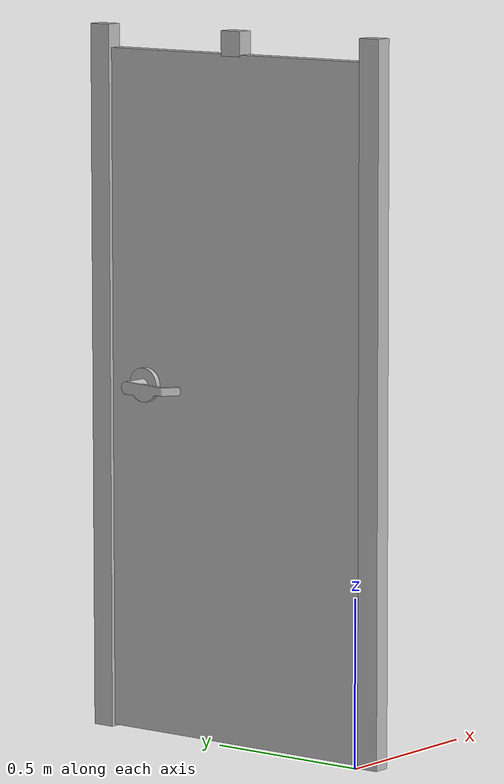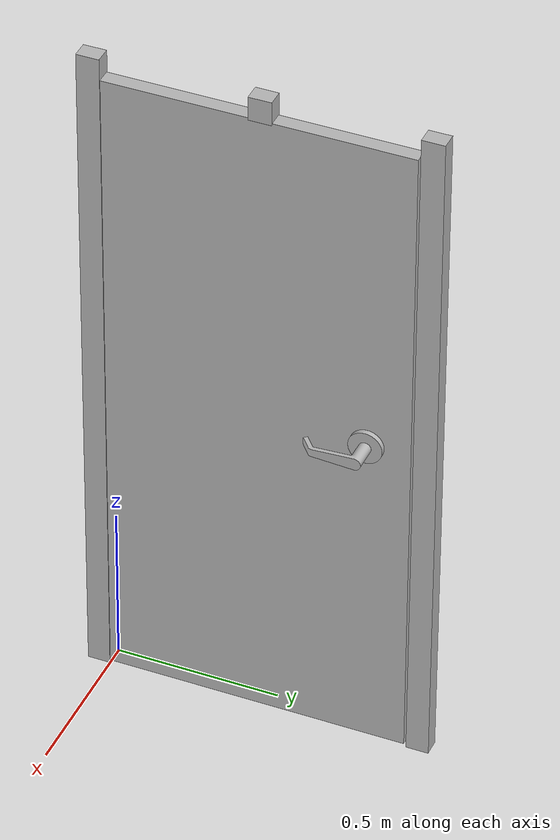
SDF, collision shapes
<?xml version="1.0" ?>
<sdf version="1.4">
  <model name="hinged_door">

    <link name="frame">
      <pose>0.06 -0.0005 0 0 0 0</pose>
      <collision name="collision_1">
        <pose>-0.025145 -0.03429 1.0541 0 0 0</pose>
        <geometry>
          <box>
            <size>0.05029 0.06858 2.10820</size>
          </box>
        </geometry>
      </collision>

      <collision name="collision_2">
        <pose>-0.025145 0.95631 1.0541 0 0 0</pose>
        <geometry>
          <box>
            <size>0.05029 0.06858 2.10820</size>
          </box>
        </geometry>
      </collision>

      <collision name="collision_3">
        <pose>-0.0251450 0.46482 2.07137 0 0 0</pose>
        <geometry>
          <box>
            <size>0.05029 0.06858 0.07366</size>
          </box>
        </geometry>
      </collision>

      <visual name="visual">
	<pose>0 -0.06858 0 0 0 0 </pose>
        <geometry>
          <mesh>
            <uri>model://hinged_door/meshes/frame.dae</uri>
          </mesh>
        </geometry>
      </visual>
    </link>

    <link name="door">
      <pose>-0.0 0.000 2.040 3.14159 0 1.57</pose>
      <inertial>
        <mass>41.3256</mass>
        <pose>0.4569 0.0349 1.016 0 0 0</pose>
        <inertia>
          <ixx>14.2053</ixx>
          <ixy>0.0004</ixy>
          <ixz>0.0000</ixz>
          <iyy>17.1997</iyy>
          <iyz>0.0000</iyz>
          <izz>3.0298</izz>
        </inertia>
      </inertial>
      <collision name="collision">
        <pose>0.4569 0.0349 1.016 0 0 0</pose>
        <geometry>
          <box>
            <size>0.9144 0.04445 2.032</size>
          </box>
        </geometry>
      </collision>

      <visual name="visual">
	<pose>0 -0.06858 0 0 0 0</pose>
        <geometry>
          <mesh>
            <uri>model://hinged_door/meshes/door.dae</uri>
          </mesh>
        </geometry>
      </visual>
    </link>

    <link name="handles">
      <pose>0.0 0.8 1.05 0 3.14 1.57</pose>
      <collision name="handle1_collision">
        <pose>0.015 -0.015 0 -1.57 0 0</pose>
        <geometry>
          <mesh>
            <uri>model://door_handle/meshes/handle.dae</uri>
          </mesh>
        </geometry>
      </collision>

      <visual name="handle1_visual">
        <pose>0.015 -0.015 0 -1.57 0 0</pose>
        <geometry>
          <mesh>
            <uri>model://door_handle/meshes/handle.dae</uri>
          </mesh>
        </geometry>
      </visual>

      <collision name="handle2_collision">
        <pose>0.015 -0.055 0 1.57 0 0</pose>
        <geometry>
          <mesh>
            <uri>model://door_handle/meshes/handle.dae</uri>
          </mesh>
        </geometry>
      </collision>

      <visual name="handle2_visual">
        <pose>0.015 -0.055 0 1.57 0 0</pose>
        <geometry>
          <mesh>
            <uri>model://door_handle/meshes/handle.dae</uri>
          </mesh>
        </geometry>
      </visual>

    </link>

    <joint name="handle" type="revolute">
      <parent>door</parent>
      <child>handles</child>
      <pose>0.015 0 0 0 0 0</pose>
      <axis>
        <xyz>1 0 0</xyz>
        <limit>
          <lower>0</lower>
          <upper>1.58</upper>
        </limit>
        <dynamics>
          <damping>1.0</damping>
          <friction>10 </friction>
        </dynamics>
      </axis>
      <physics>
        <ode>
          <cfm_damping>1</cfm_damping>
        </ode>
      </physics>
    </joint>

    <joint name="hinge" type="revolute">
      <parent>frame</parent>
      <child>door</child>
      <axis>
        <xyz>0 0 1</xyz>
        <limit>
          <lower>0</lower>
          <upper>1.58</upper>
        </limit>
        <dynamics>
          <damping>1.0</damping>
          <friction>1.0 </friction>
        </dynamics>
      </axis>
      <physics>
        <ode>
          <cfm_damping>1</cfm_damping>
        </ode>
      </physics>
    </joint>

    <joint name="world_joint" type="revolute">
      <child>frame</child>
      <parent>world</parent>
      <axis>
        <limit>
          <lower>0</lower>
          <upper>0</upper>
        </limit>
        <xyz>0 1 0</xyz>
        <dynamics>
          <damping>1.0</damping>
        </dynamics>
      </axis>
      <physics>
        <ode>
          <cfm_damping>1</cfm_damping>
        </ode>
      </physics>
    </joint>

  </model>
</sdf>
